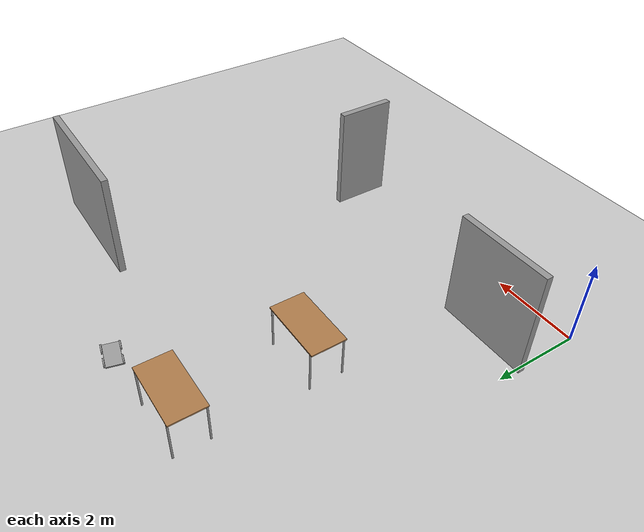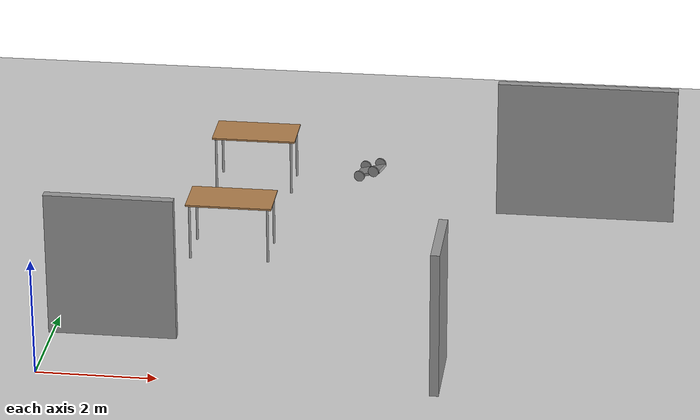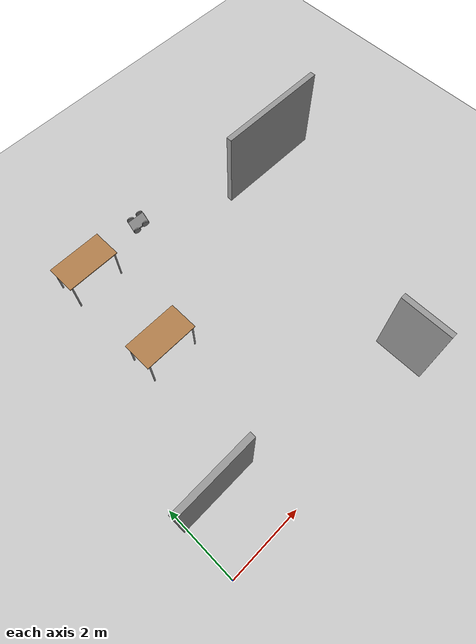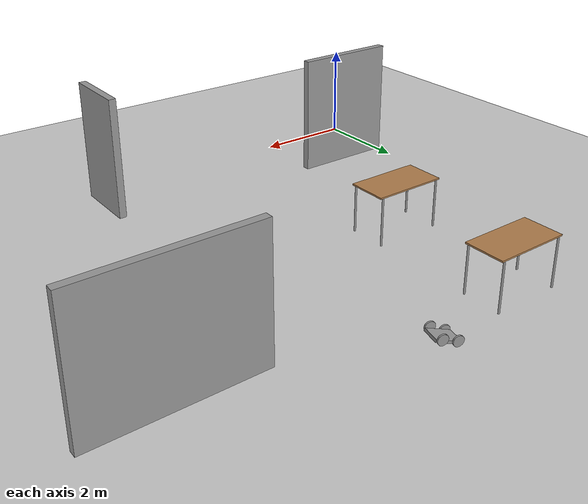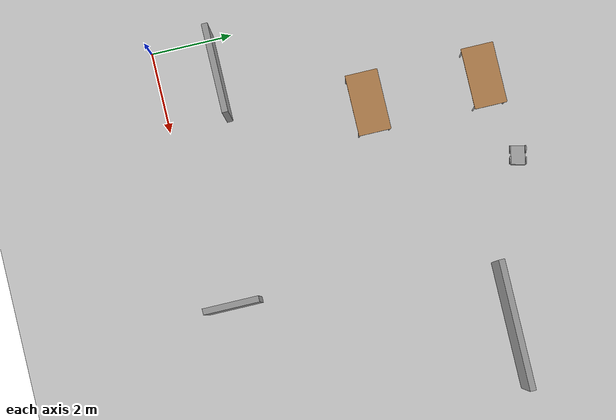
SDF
<sdf version="1.6">
 <world name="default">
  <model name="ground_plane">
   <static>1</static>
   <link name="link">
    <collision name="collision">
     <geometry><plane><normal>0 0 1</normal><size>100 100</size></plane></geometry>
     <surface>
      <contact><collide_bitmask>65535</collide_bitmask></contact>
      <friction><ode><mu>100</mu><mu2>50</mu2></ode></friction>
     </surface>
    </collision>
    <visual name="visual">
     <cast_shadows>0</cast_shadows>
     <geometry><plane><normal>0 0 1</normal><size>100 100</size></plane></geometry>
     <material>
      <script><uri>file://media/materials/scripts/gazebo.material</uri><name>Gazebo/Grey</name></script>
     </material>
    </visual>
   </link>
  </model>
  <model name="table_clone">
   <static>1</static>
   <link name="link">
    <collision name="surface">
     <pose>0 0 1 0 -0 0</pose>
     <geometry><box><size>1.5 0.8 0.03</size></box></geometry>
     <surface><friction><ode><mu>0.6</mu><mu2>0.6</mu2></ode></friction></surface>
    </collision>
    <visual name="visual1">
     <pose>0 0 1 0 -0 0</pose>
     <geometry><box><size>1.5 0.8 0.03</size></box></geometry>
     <material>
      <script><uri>file://media/materials/scripts/gazebo.material</uri><name>Gazebo/Wood</name></script>
     </material>
    </visual>
    <collision name="front_left_leg">
     <pose>0.68 0.38 0.5 0 -0 0</pose>
     <geometry><cylinder><radius>0.02</radius><length>1</length></cylinder></geometry>
    </collision>
    <visual name="front_left_leg">
     <pose>0.68 0.38 0.5 0 -0 0</pose>
     <geometry><cylinder><radius>0.02</radius><length>1</length></cylinder></geometry>
     <material>
      <script><uri>file://media/materials/scripts/gazebo.material</uri><name>Gazebo/Grey</name></script>
     </material>
    </visual>
    <collision name="front_right_leg">
     <pose>0.68 -0.38 0.5 0 -0 0</pose>
     <geometry><cylinder><radius>0.02</radius><length>1</length></cylinder></geometry>
    </collision>
    <visual name="front_right_leg">
     <pose>0.68 -0.38 0.5 0 -0 0</pose>
     <geometry><cylinder><radius>0.02</radius><length>1</length></cylinder></geometry>
     <material>
      <script><uri>file://media/materials/scripts/gazebo.material</uri><name>Gazebo/Grey</name></script>
     </material>
    </visual>
    <collision name="back_right_leg">
     <pose>-0.68 -0.38 0.5 0 -0 0</pose>
     <geometry><cylinder><radius>0.02</radius><length>1</length></cylinder></geometry>
    </collision>
    <visual name="back_right_leg">
     <pose>-0.68 -0.38 0.5 0 -0 0</pose>
     <geometry><cylinder><radius>0.02</radius><length>1</length></cylinder></geometry>
     <material>
      <script><uri>file://media/materials/scripts/gazebo.material</uri><name>Gazebo/Grey</name></script>
     </material>
    </visual>
    <collision name="back_left_leg">
     <pose>-0.68 0.38 0.5 0 -0 0</pose>
     <geometry><cylinder><radius>0.02</radius><length>1</length></cylinder></geometry>
    </collision>
    <visual name="back_left_leg">
     <pose>-0.68 0.38 0.5 0 -0 0</pose>
     <geometry><cylinder><radius>0.02</radius><length>1</length></cylinder></geometry>
     <material>
      <script><uri>file://media/materials/scripts/gazebo.material</uri><name>Gazebo/Grey</name></script>
     </material>
    </visual>
   </link>
   <pose>2.48389 4.8698 0 0 -0 0</pose>
  </model>
  <model name="table_clone_1">
   <static>1</static>
   <link name="link">
    <collision name="surface">
     <pose>0 0 1 0 -0 0</pose>
     <geometry><box><size>1.5 0.8 0.03</size></box></geometry>
     <surface><friction><ode><mu>0.6</mu><mu2>0.6</mu2></ode></friction></surface>
    </collision>
    <visual name="visual1">
     <pose>0 0 1 0 -0 0</pose>
     <geometry><box><size>1.5 0.8 0.03</size></box></geometry>
     <material>
      <script><uri>file://media/materials/scripts/gazebo.material</uri><name>Gazebo/Wood</name></script>
     </material>
    </visual>
    <collision name="front_left_leg">
     <pose>0.68 0.38 0.5 0 -0 0</pose>
     <geometry><cylinder><radius>0.02</radius><length>1</length></cylinder></geometry>
    </collision>
    <visual name="front_left_leg">
     <pose>0.68 0.38 0.5 0 -0 0</pose>
     <geometry><cylinder><radius>0.02</radius><length>1</length></cylinder></geometry>
     <material>
      <script><uri>file://media/materials/scripts/gazebo.material</uri><name>Gazebo/Grey</name></script>
     </material>
    </visual>
    <collision name="front_right_leg">
     <pose>0.68 -0.38 0.5 0 -0 0</pose>
     <geometry><cylinder><radius>0.02</radius><length>1</length></cylinder></geometry>
    </collision>
    <visual name="front_right_leg">
     <pose>0.68 -0.38 0.5 0 -0 0</pose>
     <geometry><cylinder><radius>0.02</radius><length>1</length></cylinder></geometry>
     <material>
      <script><uri>file://media/materials/scripts/gazebo.material</uri><name>Gazebo/Grey</name></script>
     </material>
    </visual>
    <collision name="back_right_leg">
     <pose>-0.68 -0.38 0.5 0 -0 0</pose>
     <geometry><cylinder><radius>0.02</radius><length>1</length></cylinder></geometry>
    </collision>
    <visual name="back_right_leg">
     <pose>-0.68 -0.38 0.5 0 -0 0</pose>
     <geometry><cylinder><radius>0.02</radius><length>1</length></cylinder></geometry>
     <material>
      <script><uri>file://media/materials/scripts/gazebo.material</uri><name>Gazebo/Grey</name></script>
     </material>
    </visual>
    <collision name="back_left_leg">
     <pose>-0.68 0.38 0.5 0 -0 0</pose>
     <geometry><cylinder><radius>0.02</radius><length>1</length></cylinder></geometry>
    </collision>
    <visual name="back_left_leg">
     <pose>-0.68 0.38 0.5 0 -0 0</pose>
     <geometry><cylinder><radius>0.02</radius><length>1</length></cylinder></geometry>
     <material>
      <script><uri>file://media/materials/scripts/gazebo.material</uri><name>Gazebo/Grey</name></script>
     </material>
    </visual>
   </link>
   <pose>2.49519 7.74494 0 0 -0 0</pose>
  </model>
  <model name="robotrevision_0">
   <link name="link_0">
    <pose>-0.15 -0.190014 -0.02401 1.5707 -0 0</pose>
    <inertial>
     <mass>1</mass>
     <inertia><ixx>0.145833</ixx><ixy>0</ixy><ixz>0</ixz><iyy>0.145833</iyy><iyz>0</iyz><izz>0.125</izz></inertia>
    </inertial>
    <visual name="visual">
     <geometry><cylinder><radius>0.1</radius><length>0.03</length></cylinder></geometry>
     <material>
      <lighting>1</lighting>
      <script><uri>file://media/materials/scripts/gazebo.material</uri><name>Gazebo/Grey</name></script>
      <shader type="pixel"><normal_map>__default__</normal_map></shader>
      <ambient>0.3 0.3 0.3 1</ambient>
      <diffuse>0.7 0.7 0.7 1</diffuse>
      <specular>0.01 0.01 0.01 1</specular>
      <emissive>0 0 0 1</emissive>
     </material>
    </visual>
    <collision name="collision">
     <geometry><cylinder><radius>0.1</radius><length>0.03</length></cylinder></geometry>
     <surface>
      <friction>
       <ode><mu>1</mu><mu2>1</mu2><fdir1>0 0 0</fdir1><slip1>0</slip1><slip2>0</slip2></ode>
       <torsional>
        <coefficient>1</coefficient>
        <patch_radius>0</patch_radius>
        <surface_radius>0</surface_radius>
        <use_patch_radius>1</use_patch_radius>
        <ode><slip>0</slip></ode>
       </torsional>
      </friction>
      <bounce><restitution_coefficient>0</restitution_coefficient><threshold>1e+06</threshold></bounce>
      <contact>
       <collide_without_contact>0</collide_without_contact>
       <collide_without_contact_bitmask>1</collide_without_contact_bitmask>
       <collide_bitmask>1</collide_bitmask>
       <ode>
        <soft_cfm>0</soft_cfm>
        <soft_erp>0.2</soft_erp>
        <kp>1e+13</kp>
        <kd>1</kd>
        <max_vel>0.01</max_vel>
        <min_depth>0</min_depth>
       </ode>
       <bullet>
        <split_impulse>1</split_impulse>
        <split_impulse_penetration_threshold>-0.01</split_impulse_penetration_threshold>
        <soft_cfm>0</soft_cfm>
        <soft_erp>0.2</soft_erp>
        <kp>1e+13</kp>
        <kd>1</kd>
       </bullet>
      </contact>
     </surface>
    </collision>
   </link>
   <link name="link_0_clone">
    <pose>0.15 -0.19001 0.016002 1.5707 -0 0</pose>
    <inertial>
     <mass>1</mass>
     <inertia><ixx>0.145833</ixx><ixy>0</ixy><ixz>0</ixz><iyy>0.145833</iyy><iyz>0</iyz><izz>0.125</izz></inertia>
    </inertial>
    <visual name="visual">
     <geometry><cylinder><radius>0.1</radius><length>0.03</length></cylinder></geometry>
     <material>
      <lighting>1</lighting>
      <script><uri>file://media/materials/scripts/gazebo.material</uri><name>Gazebo/Grey</name></script>
      <shader type="pixel"><normal_map>__default__</normal_map></shader>
      <ambient>0.3 0.3 0.3 1</ambient>
      <diffuse>0.7 0.7 0.7 1</diffuse>
      <specular>0.01 0.01 0.01 1</specular>
      <emissive>0 0 0 1</emissive>
     </material>
    </visual>
    <collision name="collision">
     <geometry><cylinder><radius>0.1</radius><length>0.03</length></cylinder></geometry>
     <surface>
      <friction>
       <ode><mu>1</mu><mu2>1</mu2><fdir1>0 0 0</fdir1><slip1>0</slip1><slip2>0</slip2></ode>
       <torsional>
        <coefficient>1</coefficient>
        <patch_radius>0</patch_radius>
        <surface_radius>0</surface_radius>
        <use_patch_radius>1</use_patch_radius>
        <ode><slip>0</slip></ode>
       </torsional>
      </friction>
      <bounce><restitution_coefficient>0</restitution_coefficient><threshold>1e+06</threshold></bounce>
      <contact>
       <collide_without_contact>0</collide_without_contact>
       <collide_without_contact_bitmask>1</collide_without_contact_bitmask>
       <collide_bitmask>1</collide_bitmask>
       <ode>
        <soft_cfm>0</soft_cfm>
        <soft_erp>0.2</soft_erp>
        <kp>1e+13</kp>
        <kd>1</kd>
        <max_vel>0.01</max_vel>
        <min_depth>0</min_depth>
       </ode>
       <bullet>
        <split_impulse>1</split_impulse>
        <split_impulse_penetration_threshold>-0.01</split_impulse_penetration_threshold>
        <soft_cfm>0</soft_cfm>
        <soft_erp>0.2</soft_erp>
        <kp>1e+13</kp>
        <kd>1</kd>
       </bullet>
      </contact>
     </surface>
    </collision>
   </link>
   <link name="link_0_clone_0">
    <pose>0.15 0.19001 0.016002 1.5707 -0 0</pose>
    <inertial>
     <mass>1</mass>
     <inertia><ixx>0.145833</ixx><ixy>0</ixy><ixz>0</ixz><iyy>0.145833</iyy><iyz>0</iyz><izz>0.125</izz></inertia>
    </inertial>
    <visual name="visual">
     <geometry><cylinder><radius>0.1</radius><length>0.03</length></cylinder></geometry>
     <material>
      <lighting>1</lighting>
      <script><uri>file://media/materials/scripts/gazebo.material</uri><name>Gazebo/Grey</name></script>
      <shader type="pixel"><normal_map>__default__</normal_map></shader>
      <ambient>0.3 0.3 0.3 1</ambient>
      <diffuse>0.7 0.7 0.7 1</diffuse>
      <specular>0.01 0.01 0.01 1</specular>
      <emissive>0 0 0 1</emissive>
     </material>
    </visual>
    <collision name="collision">
     <geometry><cylinder><radius>0.1</radius><length>0.03</length></cylinder></geometry>
     <surface>
      <friction>
       <ode><mu>1</mu><mu2>1</mu2><fdir1>0 0 0</fdir1><slip1>0</slip1><slip2>0</slip2></ode>
       <torsional>
        <coefficient>1</coefficient>
        <patch_radius>0</patch_radius>
        <surface_radius>0</surface_radius>
        <use_patch_radius>1</use_patch_radius>
        <ode><slip>0</slip></ode>
       </torsional>
      </friction>
      <bounce><restitution_coefficient>0</restitution_coefficient><threshold>1e+06</threshold></bounce>
      <contact>
       <collide_without_contact>0</collide_without_contact>
       <collide_without_contact_bitmask>1</collide_without_contact_bitmask>
       <collide_bitmask>1</collide_bitmask>
       <ode>
        <soft_cfm>0</soft_cfm>
        <soft_erp>0.2</soft_erp>
        <kp>1e+13</kp>
        <kd>1</kd>
        <max_vel>0.01</max_vel>
        <min_depth>0</min_depth>
       </ode>
       <bullet>
        <split_impulse>1</split_impulse>
        <split_impulse_penetration_threshold>-0.01</split_impulse_penetration_threshold>
        <soft_cfm>0</soft_cfm>
        <soft_erp>0.2</soft_erp>
        <kp>1e+13</kp>
        <kd>1</kd>
       </bullet>
      </contact>
     </surface>
    </collision>
   </link>
   <link name="link_0_clone_1">
    <pose>-0.15 0.19001 0.016002 1.5707 -0 0</pose>
    <inertial>
     <mass>1</mass>
     <inertia><ixx>0.145833</ixx><ixy>0</ixy><ixz>0</ixz><iyy>0.145833</iyy><iyz>0</iyz><izz>0.125</izz></inertia>
    </inertial>
    <visual name="visual">
     <geometry><cylinder><radius>0.1</radius><length>0.03</length></cylinder></geometry>
     <material>
      <lighting>1</lighting>
      <script><uri>file://media/materials/scripts/gazebo.material</uri><name>Gazebo/Grey</name></script>
      <shader type="pixel"><normal_map>__default__</normal_map></shader>
      <ambient>0.3 0.3 0.3 1</ambient>
      <diffuse>0.7 0.7 0.7 1</diffuse>
      <specular>0.01 0.01 0.01 1</specular>
      <emissive>0 0 0 1</emissive>
     </material>
    </visual>
    <collision name="collision">
     <geometry><cylinder><radius>0.1</radius><length>0.03</length></cylinder></geometry>
     <surface>
      <friction>
       <ode><mu>1</mu><mu2>1</mu2><fdir1>0 0 0</fdir1><slip1>0</slip1><slip2>0</slip2></ode>
       <torsional>
        <coefficient>1</coefficient>
        <patch_radius>0</patch_radius>
        <surface_radius>0</surface_radius>
        <use_patch_radius>1</use_patch_radius>
        <ode><slip>0</slip></ode>
       </torsional>
      </friction>
      <bounce><restitution_coefficient>0</restitution_coefficient><threshold>1e+06</threshold></bounce>
      <contact>
       <collide_without_contact>0</collide_without_contact>
       <collide_without_contact_bitmask>1</collide_without_contact_bitmask>
       <collide_bitmask>1</collide_bitmask>
       <ode>
        <soft_cfm>0</soft_cfm>
        <soft_erp>0.2</soft_erp>
        <kp>1e+13</kp>
        <kd>1</kd>
        <max_vel>0.01</max_vel>
        <min_depth>0</min_depth>
       </ode>
       <bullet>
        <split_impulse>1</split_impulse>
        <split_impulse_penetration_threshold>-0.01</split_impulse_penetration_threshold>
        <soft_cfm>0</soft_cfm>
        <soft_erp>0.2</soft_erp>
        <kp>1e+13</kp>
        <kd>1</kd>
       </bullet>
      </contact>
     </surface>
    </collision>
   </link>
   <link name="link_1">
    <pose>0 -0 -0.023997 0 -0 0</pose>
    <inertial>
     <mass>1</mass>
     <inertia>
      <ixx>0.166667</ixx>
      <ixy>0</ixy>
      <ixz>0</ixz>
      <iyy>0.166667</iyy>
      <iyz>0</iyz>
      <izz>0.166667</izz>
     </inertia>
    </inertial>
    <visual name="visual">
     <geometry><box><size>0.5 0.35 0.05</size></box></geometry>
     <material>
      <lighting>1</lighting>
      <script><uri>file://media/materials/scripts/gazebo.material</uri><name>Gazebo/Grey</name></script>
      <shader type="pixel"><normal_map>__default__</normal_map></shader>
      <ambient>0.3 0.3 0.3 1</ambient>
      <diffuse>0.7 0.7 0.7 1</diffuse>
      <specular>0.01 0.01 0.01 1</specular>
      <emissive>0 0 0 1</emissive>
     </material>
    </visual>
    <collision name="collision">
     <geometry><box><size>0.5 0.35 0.05</size></box></geometry>
     <surface>
      <friction>
       <ode><mu>1</mu><mu2>1</mu2><fdir1>0 0 0</fdir1><slip1>0</slip1><slip2>0</slip2></ode>
       <torsional>
        <coefficient>1</coefficient>
        <patch_radius>0</patch_radius>
        <surface_radius>0</surface_radius>
        <use_patch_radius>1</use_patch_radius>
        <ode><slip>0</slip></ode>
       </torsional>
      </friction>
      <bounce><restitution_coefficient>0</restitution_coefficient><threshold>1e+06</threshold></bounce>
      <contact>
       <collide_without_contact>0</collide_without_contact>
       <collide_without_contact_bitmask>1</collide_without_contact_bitmask>
       <collide_bitmask>1</collide_bitmask>
       <ode>
        <soft_cfm>0</soft_cfm>
        <soft_erp>0.2</soft_erp>
        <kp>1e+13</kp>
        <kd>1</kd>
        <max_vel>0.01</max_vel>
        <min_depth>0</min_depth>
       </ode>
       <bullet>
        <split_impulse>1</split_impulse>
        <split_impulse_penetration_threshold>-0.01</split_impulse_penetration_threshold>
        <soft_cfm>0</soft_cfm>
        <soft_erp>0.2</soft_erp>
        <kp>1e+13</kp>
        <kd>1</kd>
       </bullet>
      </contact>
     </surface>
    </collision>
   </link>
   <joint name="link_1_JOINT_4" type="revolute">
    <parent>link_1</parent>
    <child>link_0_clone_0</child>
    <axis>
     <xyz>0 0 1</xyz>
     <use_parent_model_frame>0</use_parent_model_frame>
     <limit>
      <lower>-1.79769e+308</lower>
      <upper>1.79769e+308</upper>
      <effort>-1</effort>
      <velocity>-1</velocity>
     </limit>
     <dynamics>
      <spring_reference>0</spring_reference>
      <spring_stiffness>0</spring_stiffness>
      <damping>0</damping>
     </dynamics>
    </axis>
    <physics>
     <ode><limit><cfm>0</cfm><erp>0.2</erp></limit><suspension><cfm>0</cfm><erp>0.2</erp></suspension></ode>
    </physics>
   </joint>
   <joint name="link_1_JOINT_5" type="revolute">
    <parent>link_1</parent>
    <child>link_0</child>
    <axis>
     <xyz>0 0 1</xyz>
     <use_parent_model_frame>0</use_parent_model_frame>
     <limit>
      <lower>-1.79769e+308</lower>
      <upper>1.79769e+308</upper>
      <effort>-1</effort>
      <velocity>-1</velocity>
     </limit>
     <dynamics>
      <spring_reference>0</spring_reference>
      <spring_stiffness>0</spring_stiffness>
      <damping>0</damping>
     </dynamics>
    </axis>
    <physics>
     <ode><limit><cfm>0</cfm><erp>0.2</erp></limit><suspension><cfm>0</cfm><erp>0.2</erp></suspension></ode>
    </physics>
   </joint>
   <joint name="link_1_JOINT_6" type="revolute">
    <parent>link_1</parent>
    <child>link_0_clone</child>
    <axis>
     <xyz>0 0 1</xyz>
     <use_parent_model_frame>0</use_parent_model_frame>
     <limit>
      <lower>-1.79769e+308</lower>
      <upper>1.79769e+308</upper>
      <effort>-1</effort>
      <velocity>-1</velocity>
     </limit>
     <dynamics>
      <spring_reference>0</spring_reference>
      <spring_stiffness>0</spring_stiffness>
      <damping>0</damping>
     </dynamics>
    </axis>
    <physics>
     <ode><limit><cfm>0</cfm><erp>0.2</erp></limit><suspension><cfm>0</cfm><erp>0.2</erp></suspension></ode>
    </physics>
   </joint>
   <joint name="link_1_JOINT_7" type="revolute">
    <parent>link_1</parent>
    <child>link_0_clone_1</child>
    <axis>
     <xyz>0 0 1</xyz>
     <use_parent_model_frame>0</use_parent_model_frame>
     <limit>
      <lower>-1.79769e+308</lower>
      <upper>1.79769e+308</upper>
      <effort>-1</effort>
      <velocity>-1</velocity>
     </limit>
     <dynamics>
      <spring_reference>0</spring_reference>
      <spring_stiffness>0</spring_stiffness>
      <damping>0</damping>
     </dynamics>
    </axis>
    <physics>
     <ode><limit><cfm>0</cfm><erp>0.2</erp></limit><suspension><cfm>0</cfm><erp>0.2</erp></suspension></ode>
    </physics>
   </joint>
   <static>0</static>
   <pose>4.51277 8.17021 0.170557 -1.4e-05 -0.324363 -0.247101</pose>
  </model>
  <model name="assymetry">
   <pose>5 3.5 0 0 -0 0</pose>
   <link name="Wall_3">
    <collision name="Wall_3_Collision">
     <geometry><box><size>1.35 0.15 2.5</size></box></geometry>
     <pose>0 0 1.25 0 -0 0</pose>
    </collision>
    <visual name="Wall_3_Visual">
     <pose>0 0 1.25 0 -0 0</pose>
     <geometry><box><size>1.35 0.15 2.5</size></box></geometry>
     <material>
      <script><uri>file://media/materials/scripts/gazebo.material</uri><name>Gazebo/Grey</name></script>
      <ambient>0 0 0 1</ambient>
     </material>
     <meta><layer>0</layer></meta>
    </visual>
    <pose>1.51 -2.9 0 0 -0 1.5708</pose>
   </link>
   <link name="Wall_4">
    <collision name="Wall_4_Collision">
     <geometry><box><size>2.15 0.15 2.5</size></box></geometry>
     <pose>0 0 1.25 0 -0 0</pose>
    </collision>
    <visual name="Wall_4_Visual">
     <pose>0 0 1.25 0 -0 0</pose>
     <geometry><box><size>2.15 0.15 2.5</size></box></geometry>
     <material>
      <script><uri>file://media/materials/scripts/gazebo.material</uri><name>Gazebo/Grey</name></script>
      <ambient>1 1 1 1</ambient>
     </material>
     <meta><layer>0</layer></meta>
    </visual>
    <pose>-4 -2 0 0 -0 0</pose>
   </link>
   <link name="Wall_6">
    <collision name="Wall_6_Collision">
     <geometry><box><size>3.15 0.15 2.5</size></box></geometry>
     <pose>0 0 1.25 0 -0 0</pose>
    </collision>
    <visual name="Wall_6_Visual">
     <pose>0 0 1.25 0 -0 0</pose>
     <geometry><box><size>3.15 0.15 2.5</size></box></geometry>
     <material>
      <script><uri>file://media/materials/scripts/gazebo.material</uri><name>Gazebo/Grey</name></script>
      <ambient>0 0 0 1</ambient>
     </material>
     <meta><layer>0</layer></meta>
    </visual>
    <pose>3.5 3.5 0 0 -0 0</pose>
   </link>
   <static>1</static>
  </model>
 </world>
</sdf>
